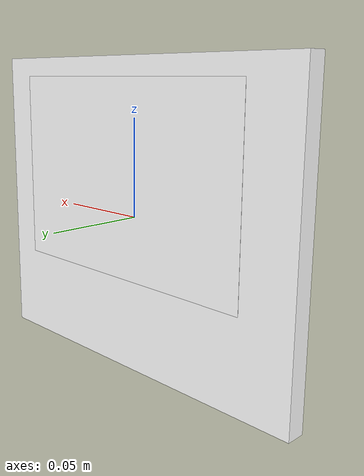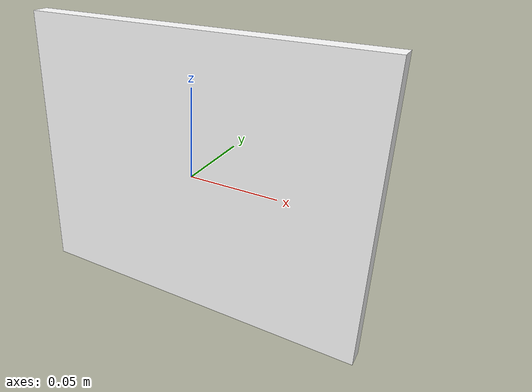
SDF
<?xml version="1.0"?>
<sdf version="1.8">
    <model name="clueboard_6">
        <static>true</static>
        <link name="clueboard_link">
            <collision name='collision'>
                <pose>0 0 0.04 0 0 0</pose>
                <geometry>
                    <box>
                        <size>0.2 0.01 0.16</size>
                    </box>
                </geometry>
            </collision>

            <visual name='visual'>
                <geometry>
                    <box>
                        <size>0.2 0.01 0.16</size>
                    </box>
                </geometry>
                <material>
                    <ambient>0 0 1 1</ambient>
                    <diffuse>1 1 1 1</diffuse>
                    <specular>0 0.5 0 0</specular>
                    <emissive>0 0 0 1</emissive>
                </material>
            </visual>
        </link>
        <link name="banner_link">
            <pose>0 0.01 0.02 0 0 0</pose>
            <collision name="collision">
                <geometry>
                    <box>
                        <size>1e-6 1e-6 1e-6</size>
                    </box>
                </geometry>
            </collision>

            <visual name="visual">
                <geometry>
                    <box>
                        <size>0.15 1e-4 0.1</size>
                    </box>
                </geometry>

                <material>
                    <ambient>1 1 1 1</ambient>
                    <diffuse>1 1 1 1</diffuse>
                    <specular>0.1 0.1 0.1 1</specular>

                    <pbr>
                        <metal>
                            <albedo_map>banners/banner_6.jpg</albedo_map>
                        </metal>
                    </pbr>
                </material>
            </visual>
        </link>
    </model>
</sdf>
